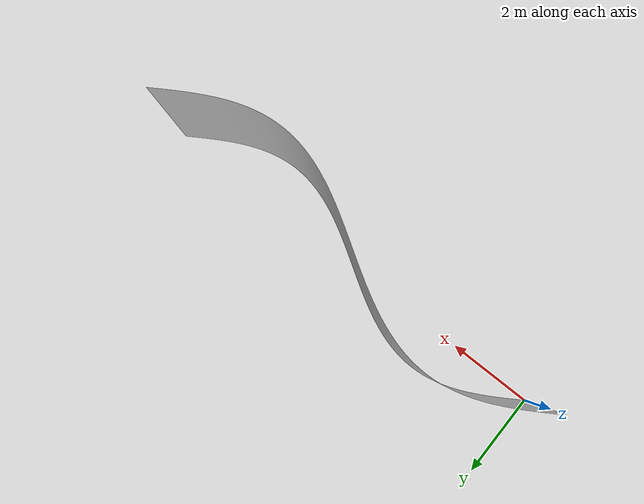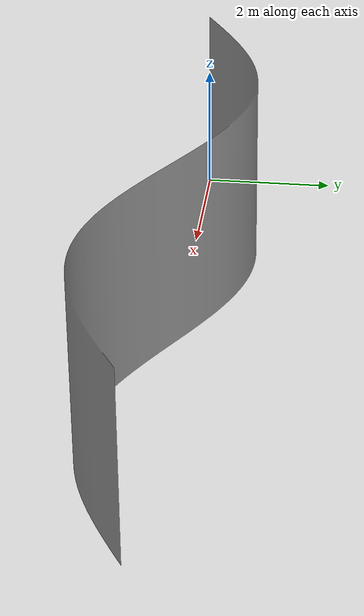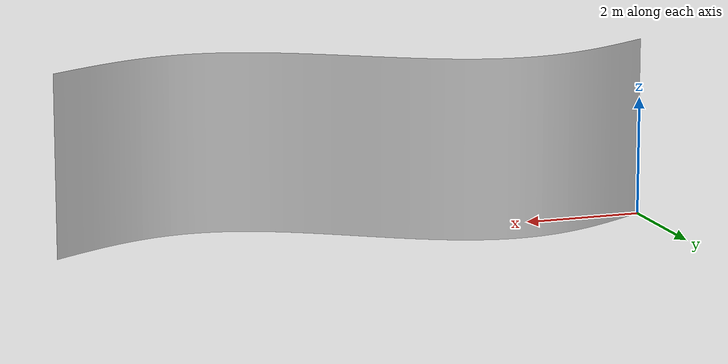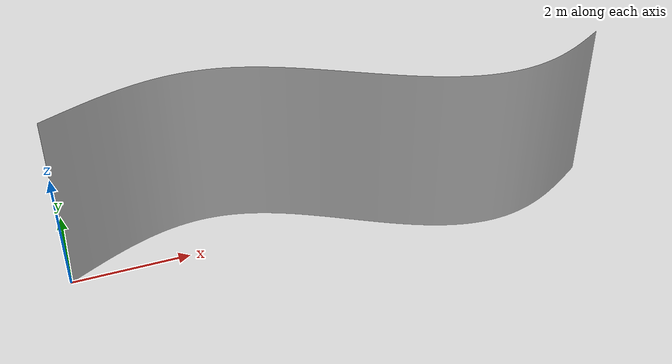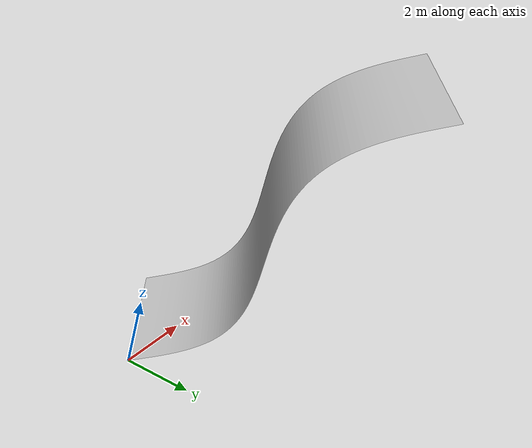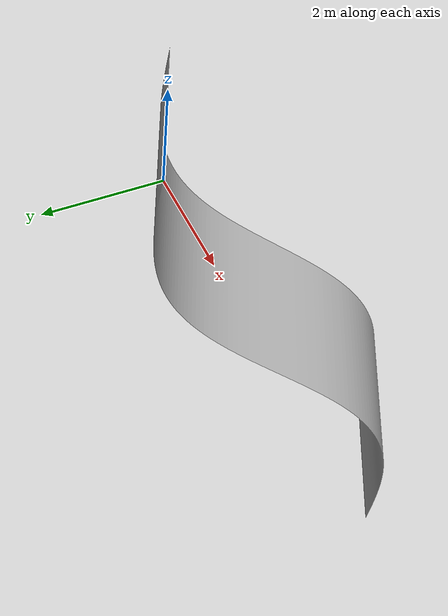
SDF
<?xml version="1.0" ?>
<sdf version="1.7">
  <model name="s_shaped_wall">
    <static>true</static>
    <link name="wall_link">
      <!-- Visual -->
      <visual name="wall_visual">
        <geometry>
          <mesh>
            <uri>model://meshes/s_shaped_wall.stl</uri>
            <scale>1 1 1</scale>
          </mesh>
        </geometry>
      </visual>

      <!-- Collision -->
      <collision name="wall_collision">
        <geometry>
          <mesh>
            <uri>model://meshes/s_shaped_wall.stl</uri>
            <scale>1 1 1</scale>
          </mesh>
        </geometry>
      </collision>
    </link>
  </model>
</sdf>
